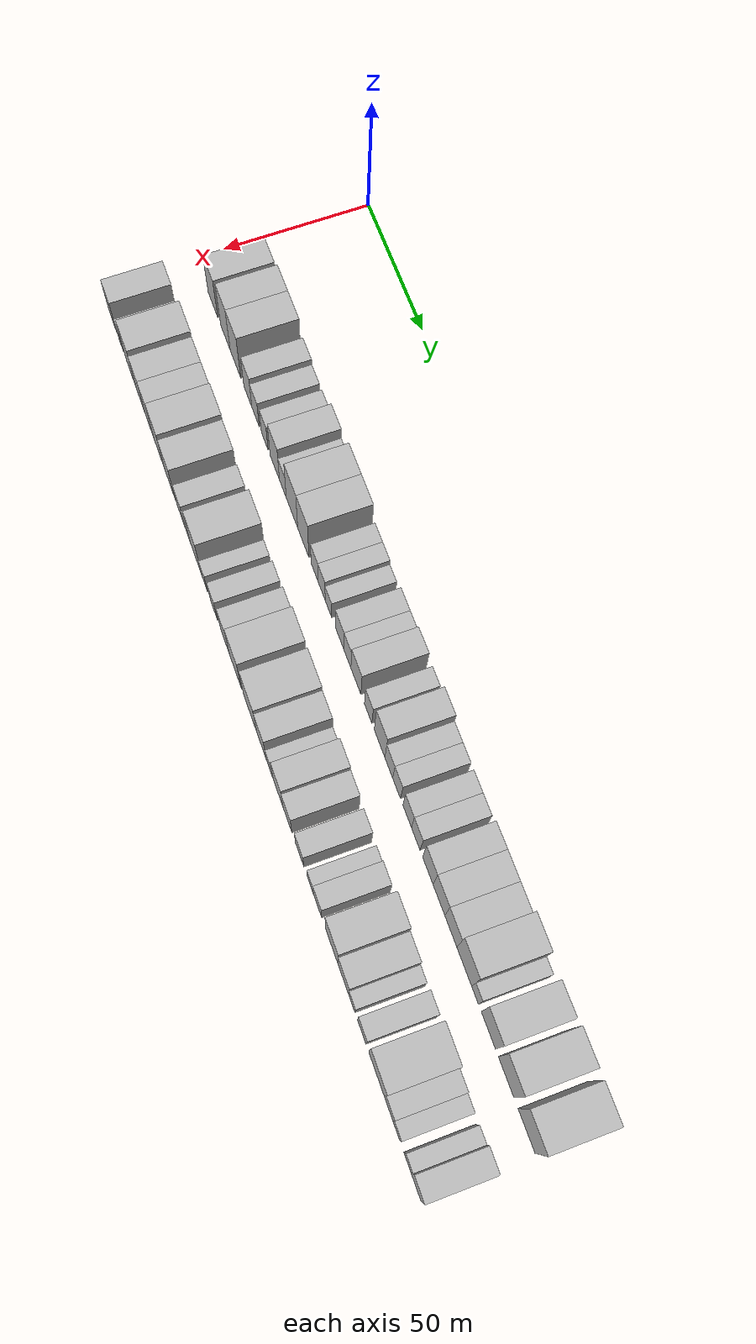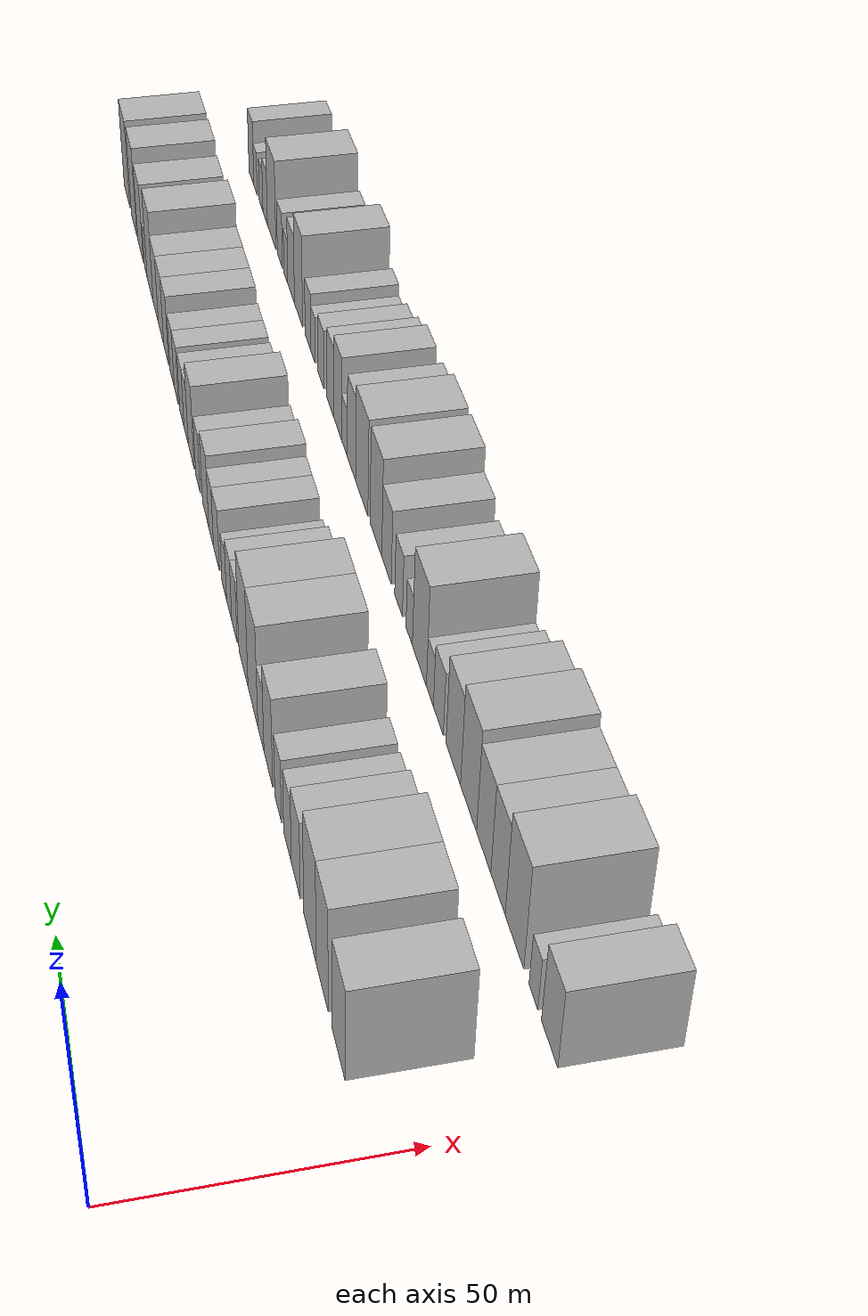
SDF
<sdf version="1.6">
 <world name="default">
  <model name="building_31">
   <static>1</static>
   <pose>50.0000 18.6461 0 0.000000 0.000000 0.000000</pose>
   <link name="link">
    <pose>0 0 10.50 0 0 0</pose>
    <collision name="collision"><geometry><box><size>20.0000 9.9068 21.0000</size></box></geometry></collision>
    <visual name="visual">
     <cast_shadows>0</cast_shadows>
     <geometry><box><size>20.0000 9.9068 21.0000</size></box></geometry>
     <material>
      <script>
       <uri>model://HANNAS_wall/materials/scripts</uri>
       <uri>model://HANNAS_wall/materials/textures</uri>
       <name>vrc/HANNAS_wall</name>
      </script>
     </material>
    </visual>
   </link>
  </model>
  <model name="building_32">
   <static>1</static>
   <pose>50.0000 31.4543 0 0.000000 0.000000 0.000000</pose>
   <link name="link">
    <pose>0 0 12.00 0 0 0</pose>
    <collision name="collision"><geometry><box><size>20.0000 9.7096 24.0000</size></box></geometry></collision>
    <visual name="visual">
     <cast_shadows>0</cast_shadows>
     <geometry><box><size>20.0000 9.7096 24.0000</size></box></geometry>
     <material>
      <script>
       <uri>model://HANNAS_wall/materials/scripts</uri>
       <uri>model://HANNAS_wall/materials/textures</uri>
       <name>vrc/HANNAS_wall</name>
      </script>
     </material>
    </visual>
   </link>
  </model>
  <model name="building_33">
   <static>1</static>
   <pose>50.0000 41.5467 0 0.000000 0.000000 0.000000</pose>
   <link name="link">
    <pose>0 0 12.00 0 0 0</pose>
    <collision name="collision"><geometry><box><size>20.0000 10.4753 24.0000</size></box></geometry></collision>
    <visual name="visual">
     <cast_shadows>0</cast_shadows>
     <geometry><box><size>20.0000 10.4753 24.0000</size></box></geometry>
     <material>
      <script>
       <uri>model://HANNAS_wall/materials/scripts</uri>
       <uri>model://HANNAS_wall/materials/textures</uri>
       <name>vrc/HANNAS_wall</name>
      </script>
     </material>
    </visual>
   </link>
  </model>
  <model name="building_34">
   <static>1</static>
   <pose>50.0000 53.7701 0 0.000000 0.000000 0.000000</pose>
   <link name="link">
    <pose>0 0 9.00 0 0 0</pose>
    <collision name="collision"><geometry><box><size>20.0000 7.9716 18.0000</size></box></geometry></collision>
    <visual name="visual">
     <cast_shadows>0</cast_shadows>
     <geometry><box><size>20.0000 7.9716 18.0000</size></box></geometry>
     <material>
      <script>
       <uri>model://HANNAS_wall/materials/scripts</uri>
       <uri>model://HANNAS_wall/materials/textures</uri>
       <name>vrc/HANNAS_wall</name>
      </script>
     </material>
    </visual>
   </link>
  </model>
  <model name="building_35">
   <static>1</static>
   <pose>50.0000 61.3067 0 0.000000 0.000000 0.000000</pose>
   <link name="link">
    <pose>0 0 7.50 0 0 0</pose>
    <collision name="collision"><geometry><box><size>20.0000 7.1015 15.0000</size></box></geometry></collision>
    <visual name="visual">
     <cast_shadows>0</cast_shadows>
     <geometry><box><size>20.0000 7.1015 15.0000</size></box></geometry>
     <material>
      <script>
       <uri>model://HANNAS_wall/materials/scripts</uri>
       <uri>model://HANNAS_wall/materials/textures</uri>
       <name>vrc/HANNAS_wall</name>
      </script>
     </material>
    </visual>
   </link>
  </model>
  <model name="building_36">
   <static>1</static>
   <pose>50.0000 70.0731 0 0.000000 0.000000 0.000000</pose>
   <link name="link">
    <pose>0 0 7.50 0 0 0</pose>
    <collision name="collision"><geometry><box><size>20.0000 6.4313 15.0000</size></box></geometry></collision>
    <visual name="visual">
     <cast_shadows>0</cast_shadows>
     <geometry><box><size>20.0000 6.4313 15.0000</size></box></geometry>
     <material>
      <script>
       <uri>model://HANNAS_wall/materials/scripts</uri>
       <uri>model://HANNAS_wall/materials/textures</uri>
       <name>vrc/HANNAS_wall</name>
      </script>
     </material>
    </visual>
   </link>
  </model>
  <model name="building_37">
   <static>1</static>
   <pose>50.0000 79.7075 0 0.000000 0.000000 0.000000</pose>
   <link name="link">
    <pose>0 0 10.50 0 0 0</pose>
    <collision name="collision"><geometry><box><size>20.0000 8.8375 21.0000</size></box></geometry></collision>
    <visual name="visual">
     <cast_shadows>0</cast_shadows>
     <geometry><box><size>20.0000 8.8375 21.0000</size></box></geometry>
     <material>
      <script>
       <uri>model://HANNAS_wall/materials/scripts</uri>
       <uri>model://HANNAS_wall/materials/textures</uri>
       <name>vrc/HANNAS_wall</name>
      </script>
     </material>
    </visual>
   </link>
  </model>
  <model name="building_38">
   <static>1</static>
   <pose>50.0000 87.2910 0 0.000000 0.000000 0.000000</pose>
   <link name="link">
    <pose>0 0 7.50 0 0 0</pose>
    <collision name="collision"><geometry><box><size>20.0000 6.3293 15.0000</size></box></geometry></collision>
    <visual name="visual">
     <cast_shadows>0</cast_shadows>
     <geometry><box><size>20.0000 6.3293 15.0000</size></box></geometry>
     <material>
      <script>
       <uri>model://HANNAS_wall/materials/scripts</uri>
       <uri>model://HANNAS_wall/materials/textures</uri>
       <name>vrc/HANNAS_wall</name>
      </script>
     </material>
    </visual>
   </link>
  </model>
  <model name="building_39">
   <static>1</static>
   <pose>50.0000 95.7228 0 0.000000 0.000000 0.000000</pose>
   <link name="link">
    <pose>0 0 12.00 0 0 0</pose>
    <collision name="collision"><geometry><box><size>20.0000 10.5344 24.0000</size></box></geometry></collision>
    <visual name="visual">
     <cast_shadows>0</cast_shadows>
     <geometry><box><size>20.0000 10.5344 24.0000</size></box></geometry>
     <material>
      <script>
       <uri>model://HANNAS_wall/materials/scripts</uri>
       <uri>model://HANNAS_wall/materials/textures</uri>
       <name>vrc/HANNAS_wall</name>
      </script>
     </material>
    </visual>
   </link>
  </model>
  <model name="building_40">
   <static>1</static>
   <pose>50.0000 106.0783 0 0.000000 0.000000 0.000000</pose>
   <link name="link">
    <pose>0 0 12.00 0 0 0</pose>
    <collision name="collision"><geometry><box><size>20.0000 10.1767 24.0000</size></box></geometry></collision>
    <visual name="visual">
     <cast_shadows>0</cast_shadows>
     <geometry><box><size>20.0000 10.1767 24.0000</size></box></geometry>
     <material>
      <script>
       <uri>model://HANNAS_wall/materials/scripts</uri>
       <uri>model://HANNAS_wall/materials/textures</uri>
       <name>vrc/HANNAS_wall</name>
      </script>
     </material>
    </visual>
   </link>
  </model>
  <model name="building_41">
   <static>1</static>
   <pose>50.0000 116.3353 0 0.000000 0.000000 0.000000</pose>
   <link name="link">
    <pose>0 0 7.50 0 0 0</pose>
    <collision name="collision"><geometry><box><size>20.0000 6.3371 15.0000</size></box></geometry></collision>
    <visual name="visual">
     <cast_shadows>0</cast_shadows>
     <geometry><box><size>20.0000 6.3371 15.0000</size></box></geometry>
     <material>
      <script>
       <uri>model://HANNAS_wall/materials/scripts</uri>
       <uri>model://HANNAS_wall/materials/textures</uri>
       <name>vrc/HANNAS_wall</name>
      </script>
     </material>
    </visual>
   </link>
  </model>
  <model name="building_42">
   <static>1</static>
   <pose>50.0000 122.5918 0 0.000000 0.000000 0.000000</pose>
   <link name="link">
    <pose>0 0 7.50 0 0 0</pose>
    <collision name="collision"><geometry><box><size>20.0000 6.1759 15.0000</size></box></geometry></collision>
    <visual name="visual">
     <cast_shadows>0</cast_shadows>
     <geometry><box><size>20.0000 6.1759 15.0000</size></box></geometry>
     <material>
      <script>
       <uri>model://HANNAS_wall/materials/scripts</uri>
       <uri>model://HANNAS_wall/materials/textures</uri>
       <name>vrc/HANNAS_wall</name>
      </script>
     </material>
    </visual>
   </link>
  </model>
  <model name="building_43">
   <static>1</static>
   <pose>50.0000 128.5750 0 0.000000 0.000000 0.000000</pose>
   <link name="link">
    <pose>0 0 6.00 0 0 0</pose>
    <collision name="collision"><geometry><box><size>20.0000 5.7906 12.0000</size></box></geometry></collision>
    <visual name="visual">
     <cast_shadows>0</cast_shadows>
     <geometry><box><size>20.0000 5.7906 12.0000</size></box></geometry>
     <material>
      <script>
       <uri>model://HANNAS_wall/materials/scripts</uri>
       <uri>model://HANNAS_wall/materials/textures</uri>
       <name>vrc/HANNAS_wall</name>
      </script>
     </material>
    </visual>
   </link>
  </model>
  <model name="building_44">
   <static>1</static>
   <pose>50.0000 138.1663 0 0.000000 0.000000 0.000000</pose>
   <link name="link">
    <pose>0 0 7.50 0 0 0</pose>
    <collision name="collision"><geometry><box><size>20.0000 7.3919 15.0000</size></box></geometry></collision>
    <visual name="visual">
     <cast_shadows>0</cast_shadows>
     <geometry><box><size>20.0000 7.3919 15.0000</size></box></geometry>
     <material>
      <script>
       <uri>model://HANNAS_wall/materials/scripts</uri>
       <uri>model://HANNAS_wall/materials/textures</uri>
       <name>vrc/HANNAS_wall</name>
      </script>
     </material>
    </visual>
   </link>
  </model>
  <model name="building_45">
   <static>1</static>
   <pose>50.0000 144.9747 0 0.000000 0.000000 0.000000</pose>
   <link name="link">
    <pose>0 0 7.50 0 0 0</pose>
    <collision name="collision"><geometry><box><size>20.0000 6.2251 15.0000</size></box></geometry></collision>
    <visual name="visual">
     <cast_shadows>0</cast_shadows>
     <geometry><box><size>20.0000 6.2251 15.0000</size></box></geometry>
     <material>
      <script>
       <uri>model://HANNAS_wall/materials/scripts</uri>
       <uri>model://HANNAS_wall/materials/textures</uri>
       <name>vrc/HANNAS_wall</name>
      </script>
     </material>
    </visual>
   </link>
  </model>
  <model name="building_46">
   <static>1</static>
   <pose>50.0000 152.2790 0 0.000000 0.000000 0.000000</pose>
   <link name="link">
    <pose>0 0 9.00 0 0 0</pose>
    <collision name="collision"><geometry><box><size>20.0000 8.3834 18.0000</size></box></geometry></collision>
    <visual name="visual">
     <cast_shadows>0</cast_shadows>
     <geometry><box><size>20.0000 8.3834 18.0000</size></box></geometry>
     <material>
      <script>
       <uri>model://HANNAS_wall/materials/scripts</uri>
       <uri>model://HANNAS_wall/materials/textures</uri>
       <name>vrc/HANNAS_wall</name>
      </script>
     </material>
    </visual>
   </link>
  </model>
  <model name="building_47">
   <static>1</static>
   <pose>50.0000 162.5664 0 0.000000 0.000000 0.000000</pose>
   <link name="link">
    <pose>0 0 7.50 0 0 0</pose>
    <collision name="collision"><geometry><box><size>20.0000 6.1914 15.0000</size></box></geometry></collision>
    <visual name="visual">
     <cast_shadows>0</cast_shadows>
     <geometry><box><size>20.0000 6.1914 15.0000</size></box></geometry>
     <material>
      <script>
       <uri>model://HANNAS_wall/materials/scripts</uri>
       <uri>model://HANNAS_wall/materials/textures</uri>
       <name>vrc/HANNAS_wall</name>
      </script>
     </material>
    </visual>
   </link>
  </model>
  <model name="building_48">
   <static>1</static>
   <pose>50.0000 172.0053 0 0.000000 0.000000 0.000000</pose>
   <link name="link">
    <pose>0 0 10.50 0 0 0</pose>
    <collision name="collision"><geometry><box><size>20.0000 8.6865 21.0000</size></box></geometry></collision>
    <visual name="visual">
     <cast_shadows>0</cast_shadows>
     <geometry><box><size>20.0000 8.6865 21.0000</size></box></geometry>
     <material>
      <script>
       <uri>model://HANNAS_wall/materials/scripts</uri>
       <uri>model://HANNAS_wall/materials/textures</uri>
       <name>vrc/HANNAS_wall</name>
      </script>
     </material>
    </visual>
   </link>
  </model>
  <model name="building_49">
   <static>1</static>
   <pose>50.0000 179.5448 0 0.000000 0.000000 0.000000</pose>
   <link name="link">
    <pose>0 0 7.50 0 0 0</pose>
    <collision name="collision"><geometry><box><size>20.0000 6.3926 15.0000</size></box></geometry></collision>
    <visual name="visual">
     <cast_shadows>0</cast_shadows>
     <geometry><box><size>20.0000 6.3926 15.0000</size></box></geometry>
     <material>
      <script>
       <uri>model://HANNAS_wall/materials/scripts</uri>
       <uri>model://HANNAS_wall/materials/textures</uri>
       <name>vrc/HANNAS_wall</name>
      </script>
     </material>
    </visual>
   </link>
  </model>
  <model name="building_50">
   <static>1</static>
   <pose>50.0000 185.8304 0 0.000000 0.000000 0.000000</pose>
   <link name="link">
    <pose>0 0 7.50 0 0 0</pose>
    <collision name="collision"><geometry><box><size>20.0000 6.1786 15.0000</size></box></geometry></collision>
    <visual name="visual">
     <cast_shadows>0</cast_shadows>
     <geometry><box><size>20.0000 6.1786 15.0000</size></box></geometry>
     <material>
      <script>
       <uri>model://HANNAS_wall/materials/scripts</uri>
       <uri>model://HANNAS_wall/materials/textures</uri>
       <name>vrc/HANNAS_wall</name>
      </script>
     </material>
    </visual>
   </link>
  </model>
  <model name="building_51">
   <static>1</static>
   <pose>50.0000 194.2965 0 0.000000 0.000000 0.000000</pose>
   <link name="link">
    <pose>0 0 7.50 0 0 0</pose>
    <collision name="collision"><geometry><box><size>20.0000 6.7537 15.0000</size></box></geometry></collision>
    <visual name="visual">
     <cast_shadows>0</cast_shadows>
     <geometry><box><size>20.0000 6.7537 15.0000</size></box></geometry>
     <material>
      <script>
       <uri>model://HANNAS_wall/materials/scripts</uri>
       <uri>model://HANNAS_wall/materials/textures</uri>
       <name>vrc/HANNAS_wall</name>
      </script>
     </material>
    </visual>
   </link>
  </model>
  <model name="building_52">
   <static>1</static>
   <pose>50.0000 201.0290 0 0.000000 0.000000 0.000000</pose>
   <link name="link">
    <pose>0 0 7.50 0 0 0</pose>
    <collision name="collision"><geometry><box><size>20.0000 6.7113 15.0000</size></box></geometry></collision>
    <visual name="visual">
     <cast_shadows>0</cast_shadows>
     <geometry><box><size>20.0000 6.7113 15.0000</size></box></geometry>
     <material>
      <script>
       <uri>model://HANNAS_wall/materials/scripts</uri>
       <uri>model://HANNAS_wall/materials/textures</uri>
       <name>vrc/HANNAS_wall</name>
      </script>
     </material>
    </visual>
   </link>
  </model>
  <model name="building_53">
   <static>1</static>
   <pose>50.0000 210.4382 0 0.000000 0.000000 0.000000</pose>
   <link name="link">
    <pose>0 0 9.00 0 0 0</pose>
    <collision name="collision"><geometry><box><size>20.0000 8.1071 18.0000</size></box></geometry></collision>
    <visual name="visual">
     <cast_shadows>0</cast_shadows>
     <geometry><box><size>20.0000 8.1071 18.0000</size></box></geometry>
     <material>
      <script>
       <uri>model://HANNAS_wall/materials/scripts</uri>
       <uri>model://HANNAS_wall/materials/textures</uri>
       <name>vrc/HANNAS_wall</name>
      </script>
     </material>
    </visual>
   </link>
  </model>
  <model name="building_54">
   <static>1</static>
   <pose>50.0000 218.9860 0 0.000000 0.000000 0.000000</pose>
   <link name="link">
    <pose>0 0 9.00 0 0 0</pose>
    <collision name="collision"><geometry><box><size>20.0000 8.9886 18.0000</size></box></geometry></collision>
    <visual name="visual">
     <cast_shadows>0</cast_shadows>
     <geometry><box><size>20.0000 8.9886 18.0000</size></box></geometry>
     <material>
      <script>
       <uri>model://HANNAS_wall/materials/scripts</uri>
       <uri>model://HANNAS_wall/materials/textures</uri>
       <name>vrc/HANNAS_wall</name>
      </script>
     </material>
    </visual>
   </link>
  </model>
  <model name="building_55">
   <static>1</static>
   <pose>50.0000 227.9775 0 0.000000 0.000000 0.000000</pose>
   <link name="link">
    <pose>0 0 9.00 0 0 0</pose>
    <collision name="collision"><geometry><box><size>20.0000 8.9945 18.0000</size></box></geometry></collision>
    <visual name="visual">
     <cast_shadows>0</cast_shadows>
     <geometry><box><size>20.0000 8.9945 18.0000</size></box></geometry>
     <material>
      <script>
       <uri>model://HANNAS_wall/materials/scripts</uri>
       <uri>model://HANNAS_wall/materials/textures</uri>
       <name>vrc/HANNAS_wall</name>
      </script>
     </material>
    </visual>
   </link>
  </model>
  <model name="building_56">
   <static>1</static>
   <pose>50.0000 237.9417 0 0.000000 0.000000 0.000000</pose>
   <link name="link">
    <pose>0 0 12.00 0 0 0</pose>
    <collision name="collision"><geometry><box><size>20.0000 10.9339 24.0000</size></box></geometry></collision>
    <visual name="visual">
     <cast_shadows>0</cast_shadows>
     <geometry><box><size>20.0000 10.9339 24.0000</size></box></geometry>
     <material>
      <script>
       <uri>model://HANNAS_wall/materials/scripts</uri>
       <uri>model://HANNAS_wall/materials/textures</uri>
       <name>vrc/HANNAS_wall</name>
      </script>
     </material>
    </visual>
   </link>
  </model>
  <model name="building_57">
   <static>1</static>
   <pose>50.0000 245.8787 0 0.000000 0.000000 0.000000</pose>
   <link name="link">
    <pose>0 0 6.00 0 0 0</pose>
    <collision name="collision"><geometry><box><size>20.0000 4.9400 12.0000</size></box></geometry></collision>
    <visual name="visual">
     <cast_shadows>0</cast_shadows>
     <geometry><box><size>20.0000 4.9400 12.0000</size></box></geometry>
     <material>
      <script>
       <uri>model://HANNAS_wall/materials/scripts</uri>
       <uri>model://HANNAS_wall/materials/textures</uri>
       <name>vrc/HANNAS_wall</name>
      </script>
     </material>
    </visual>
   </link>
  </model>
  <model name="building_58">
   <static>1</static>
   <pose>50.0000 255.4350 0 0.000000 0.000000 0.000000</pose>
   <link name="link">
    <pose>0 0 10.50 0 0 0</pose>
    <collision name="collision"><geometry><box><size>20.0000 10.1725 21.0000</size></box></geometry></collision>
    <visual name="visual">
     <cast_shadows>0</cast_shadows>
     <geometry><box><size>20.0000 10.1725 21.0000</size></box></geometry>
     <material>
      <script>
       <uri>model://HANNAS_wall/materials/scripts</uri>
       <uri>model://HANNAS_wall/materials/textures</uri>
       <name>vrc/HANNAS_wall</name>
      </script>
     </material>
    </visual>
   </link>
  </model>
  <model name="building_59">
   <static>1</static>
   <pose>50.0000 267.9128 0 0.000000 0.000000 0.000000</pose>
   <link name="link">
    <pose>0 0 12.00 0 0 0</pose>
    <collision name="collision"><geometry><box><size>20.0000 10.7831 24.0000</size></box></geometry></collision>
    <visual name="visual">
     <cast_shadows>0</cast_shadows>
     <geometry><box><size>20.0000 10.7831 24.0000</size></box></geometry>
     <material>
      <script>
       <uri>model://HANNAS_wall/materials/scripts</uri>
       <uri>model://HANNAS_wall/materials/textures</uri>
       <name>vrc/HANNAS_wall</name>
      </script>
     </material>
    </visual>
   </link>
  </model>
  <model name="building_60">
   <static>1</static>
   <pose>50.0000 282.1085 0 0.000000 0.000000 0.000000</pose>
   <link name="link">
    <pose>0 0 12.00 0 0 0</pose>
    <collision name="collision"><geometry><box><size>20.0000 11.6082 24.0000</size></box></geometry></collision>
    <visual name="visual">
     <cast_shadows>0</cast_shadows>
     <geometry><box><size>20.0000 11.6082 24.0000</size></box></geometry>
     <material>
      <script>
       <uri>model://HANNAS_wall/materials/scripts</uri>
       <uri>model://HANNAS_wall/materials/textures</uri>
       <name>vrc/HANNAS_wall</name>
      </script>
     </material>
    </visual>
   </link>
  </model>
  <model name="building_92">
   <static>1</static>
   <pose>82.0000 13.9997 0 0.000000 0.000000 0.000000</pose>
   <link name="link">
    <pose>0 0 9.00 0 0 0</pose>
    <collision name="collision"><geometry><box><size>20.0000 8.9825 18.0000</size></box></geometry></collision>
    <visual name="visual">
     <cast_shadows>0</cast_shadows>
     <geometry><box><size>20.0000 8.9825 18.0000</size></box></geometry>
     <material>
      <script>
       <uri>model://HANNAS_wall/materials/scripts</uri>
       <uri>model://HANNAS_wall/materials/textures</uri>
       <name>vrc/HANNAS_wall</name>
      </script>
     </material>
    </visual>
   </link>
  </model>
  <model name="building_93">
   <static>1</static>
   <pose>82.0000 23.0191 0 0.000000 0.000000 0.000000</pose>
   <link name="link">
    <pose>0 0 6.00 0 0 0</pose>
    <collision name="collision"><geometry><box><size>20.0000 5.0563 12.0000</size></box></geometry></collision>
    <visual name="visual">
     <cast_shadows>0</cast_shadows>
     <geometry><box><size>20.0000 5.0563 12.0000</size></box></geometry>
     <material>
      <script>
       <uri>model://HANNAS_wall/materials/scripts</uri>
       <uri>model://HANNAS_wall/materials/textures</uri>
       <name>vrc/HANNAS_wall</name>
      </script>
     </material>
    </visual>
   </link>
  </model>
  <model name="building_94">
   <static>1</static>
   <pose>82.0000 34.1795 0 0.000000 0.000000 0.000000</pose>
   <link name="link">
    <pose>0 0 12.00 0 0 0</pose>
    <collision name="collision"><geometry><box><size>20.0000 11.2644 24.0000</size></box></geometry></collision>
    <visual name="visual">
     <cast_shadows>0</cast_shadows>
     <geometry><box><size>20.0000 11.2644 24.0000</size></box></geometry>
     <material>
      <script>
       <uri>model://HANNAS_wall/materials/scripts</uri>
       <uri>model://HANNAS_wall/materials/textures</uri>
       <name>vrc/HANNAS_wall</name>
      </script>
     </material>
    </visual>
   </link>
  </model>
  <model name="building_95">
   <static>1</static>
   <pose>82.0000 44.3435 0 0.000000 0.000000 0.000000</pose>
   <link name="link">
    <pose>0 0 10.50 0 0 0</pose>
    <collision name="collision"><geometry><box><size>20.0000 9.0637 21.0000</size></box></geometry></collision>
    <visual name="visual">
     <cast_shadows>0</cast_shadows>
     <geometry><box><size>20.0000 9.0637 21.0000</size></box></geometry>
     <material>
      <script>
       <uri>model://HANNAS_wall/materials/scripts</uri>
       <uri>model://HANNAS_wall/materials/textures</uri>
       <name>vrc/HANNAS_wall</name>
      </script>
     </material>
    </visual>
   </link>
  </model>
  <model name="building_96">
   <static>1</static>
   <pose>82.0000 53.5678 0 0.000000 0.000000 0.000000</pose>
   <link name="link">
    <pose>0 0 10.50 0 0 0</pose>
    <collision name="collision"><geometry><box><size>20.0000 9.3848 21.0000</size></box></geometry></collision>
    <visual name="visual">
     <cast_shadows>0</cast_shadows>
     <geometry><box><size>20.0000 9.3848 21.0000</size></box></geometry>
     <material>
      <script>
       <uri>model://HANNAS_wall/materials/scripts</uri>
       <uri>model://HANNAS_wall/materials/textures</uri>
       <name>vrc/HANNAS_wall</name>
      </script>
     </material>
    </visual>
   </link>
  </model>
  <model name="building_97">
   <static>1</static>
   <pose>82.0000 63.7825 0 0.000000 0.000000 0.000000</pose>
   <link name="link">
    <pose>0 0 12.00 0 0 0</pose>
    <collision name="collision"><geometry><box><size>20.0000 11.0447 24.0000</size></box></geometry></collision>
    <visual name="visual">
     <cast_shadows>0</cast_shadows>
     <geometry><box><size>20.0000 11.0447 24.0000</size></box></geometry>
     <material>
      <script>
       <uri>model://HANNAS_wall/materials/scripts</uri>
       <uri>model://HANNAS_wall/materials/textures</uri>
       <name>vrc/HANNAS_wall</name>
      </script>
     </material>
    </visual>
   </link>
  </model>
  <model name="building_98">
   <static>1</static>
   <pose>82.0000 74.5364 0 0.000000 0.000000 0.000000</pose>
   <link name="link">
    <pose>0 0 10.50 0 0 0</pose>
    <collision name="collision"><geometry><box><size>20.0000 10.4630 21.0000</size></box></geometry></collision>
    <visual name="visual">
     <cast_shadows>0</cast_shadows>
     <geometry><box><size>20.0000 10.4630 21.0000</size></box></geometry>
     <material>
      <script>
       <uri>model://HANNAS_wall/materials/scripts</uri>
       <uri>model://HANNAS_wall/materials/textures</uri>
       <name>vrc/HANNAS_wall</name>
      </script>
     </material>
    </visual>
   </link>
  </model>
  <model name="building_99">
   <static>1</static>
   <pose>82.0000 85.5114 0 0.000000 0.000000 0.000000</pose>
   <link name="link">
    <pose>0 0 7.50 0 0 0</pose>
    <collision name="collision"><geometry><box><size>20.0000 7.4872 15.0000</size></box></geometry></collision>
    <visual name="visual">
     <cast_shadows>0</cast_shadows>
     <geometry><box><size>20.0000 7.4872 15.0000</size></box></geometry>
     <material>
      <script>
       <uri>model://HANNAS_wall/materials/scripts</uri>
       <uri>model://HANNAS_wall/materials/textures</uri>
       <name>vrc/HANNAS_wall</name>
      </script>
     </material>
    </visual>
   </link>
  </model>
  <model name="building_100">
   <static>1</static>
   <pose>82.0000 91.9679 0 0.000000 0.000000 0.000000</pose>
   <link name="link">
    <pose>0 0 6.00 0 0 0</pose>
    <collision name="collision"><geometry><box><size>20.0000 5.4258 12.0000</size></box></geometry></collision>
    <visual name="visual">
     <cast_shadows>0</cast_shadows>
     <geometry><box><size>20.0000 5.4258 12.0000</size></box></geometry>
     <material>
      <script>
       <uri>model://HANNAS_wall/materials/scripts</uri>
       <uri>model://HANNAS_wall/materials/textures</uri>
       <name>vrc/HANNAS_wall</name>
      </script>
     </material>
    </visual>
   </link>
  </model>
  <model name="building_101">
   <static>1</static>
   <pose>82.0000 100.3058 0 0.000000 0.000000 0.000000</pose>
   <link name="link">
    <pose>0 0 12.00 0 0 0</pose>
    <collision name="collision"><geometry><box><size>20.0000 11.2501 24.0000</size></box></geometry></collision>
    <visual name="visual">
     <cast_shadows>0</cast_shadows>
     <geometry><box><size>20.0000 11.2501 24.0000</size></box></geometry>
     <material>
      <script>
       <uri>model://HANNAS_wall/materials/scripts</uri>
       <uri>model://HANNAS_wall/materials/textures</uri>
       <name>vrc/HANNAS_wall</name>
      </script>
     </material>
    </visual>
   </link>
  </model>
  <model name="building_102">
   <static>1</static>
   <pose>82.0000 108.5833 0 0.000000 0.000000 0.000000</pose>
   <link name="link">
    <pose>0 0 6.00 0 0 0</pose>
    <collision name="collision"><geometry><box><size>20.0000 5.3048 12.0000</size></box></geometry></collision>
    <visual name="visual">
     <cast_shadows>0</cast_shadows>
     <geometry><box><size>20.0000 5.3048 12.0000</size></box></geometry>
     <material>
      <script>
       <uri>model://HANNAS_wall/materials/scripts</uri>
       <uri>model://HANNAS_wall/materials/textures</uri>
       <name>vrc/HANNAS_wall</name>
      </script>
     </material>
    </visual>
   </link>
  </model>
  <model name="building_103">
   <static>1</static>
   <pose>82.0000 117.5662 0 0.000000 0.000000 0.000000</pose>
   <link name="link">
    <pose>0 0 7.50 0 0 0</pose>
    <collision name="collision"><geometry><box><size>20.0000 6.6611 15.0000</size></box></geometry></collision>
    <visual name="visual">
     <cast_shadows>0</cast_shadows>
     <geometry><box><size>20.0000 6.6611 15.0000</size></box></geometry>
     <material>
      <script>
       <uri>model://HANNAS_wall/materials/scripts</uri>
       <uri>model://HANNAS_wall/materials/textures</uri>
       <name>vrc/HANNAS_wall</name>
      </script>
     </material>
    </visual>
   </link>
  </model>
  <model name="building_104">
   <static>1</static>
   <pose>82.0000 128.1525 0 0.000000 0.000000 0.000000</pose>
   <link name="link">
    <pose>0 0 9.00 0 0 0</pose>
    <collision name="collision"><geometry><box><size>20.0000 8.5114 18.0000</size></box></geometry></collision>
    <visual name="visual">
     <cast_shadows>0</cast_shadows>
     <geometry><box><size>20.0000 8.5114 18.0000</size></box></geometry>
     <material>
      <script>
       <uri>model://HANNAS_wall/materials/scripts</uri>
       <uri>model://HANNAS_wall/materials/textures</uri>
       <name>vrc/HANNAS_wall</name>
      </script>
     </material>
    </visual>
   </link>
  </model>
  <model name="building_105">
   <static>1</static>
   <pose>82.0000 137.8595 0 0.000000 0.000000 0.000000</pose>
   <link name="link">
    <pose>0 0 12.00 0 0 0</pose>
    <collision name="collision"><geometry><box><size>20.0000 10.9026 24.0000</size></box></geometry></collision>
    <visual name="visual">
     <cast_shadows>0</cast_shadows>
     <geometry><box><size>20.0000 10.9026 24.0000</size></box></geometry>
     <material>
      <script>
       <uri>model://HANNAS_wall/materials/scripts</uri>
       <uri>model://HANNAS_wall/materials/textures</uri>
       <name>vrc/HANNAS_wall</name>
      </script>
     </material>
    </visual>
   </link>
  </model>
  <model name="building_106">
   <static>1</static>
   <pose>82.0000 151.2969 0 0.000000 0.000000 0.000000</pose>
   <link name="link">
    <pose>0 0 12.00 0 0 0</pose>
    <collision name="collision"><geometry><box><size>20.0000 11.9722 24.0000</size></box></geometry></collision>
    <visual name="visual">
     <cast_shadows>0</cast_shadows>
     <geometry><box><size>20.0000 11.9722 24.0000</size></box></geometry>
     <material>
      <script>
       <uri>model://HANNAS_wall/materials/scripts</uri>
       <uri>model://HANNAS_wall/materials/textures</uri>
       <name>vrc/HANNAS_wall</name>
      </script>
     </material>
    </visual>
   </link>
  </model>
  <model name="building_107">
   <static>1</static>
   <pose>82.0000 161.4919 0 0.000000 0.000000 0.000000</pose>
   <link name="link">
    <pose>0 0 10.50 0 0 0</pose>
    <collision name="collision"><geometry><box><size>20.0000 8.4177 21.0000</size></box></geometry></collision>
    <visual name="visual">
     <cast_shadows>0</cast_shadows>
     <geometry><box><size>20.0000 8.4177 21.0000</size></box></geometry>
     <material>
      <script>
       <uri>model://HANNAS_wall/materials/scripts</uri>
       <uri>model://HANNAS_wall/materials/textures</uri>
       <name>vrc/HANNAS_wall</name>
      </script>
     </material>
    </visual>
   </link>
  </model>
  <model name="building_108">
   <static>1</static>
   <pose>82.0000 168.6407 0 0.000000 0.000000 0.000000</pose>
   <link name="link">
    <pose>0 0 6.00 0 0 0</pose>
    <collision name="collision"><geometry><box><size>20.0000 5.8800 12.0000</size></box></geometry></collision>
    <visual name="visual">
     <cast_shadows>0</cast_shadows>
     <geometry><box><size>20.0000 5.8800 12.0000</size></box></geometry>
     <material>
      <script>
       <uri>model://HANNAS_wall/materials/scripts</uri>
       <uri>model://HANNAS_wall/materials/textures</uri>
       <name>vrc/HANNAS_wall</name>
      </script>
     </material>
    </visual>
   </link>
  </model>
  <model name="building_109">
   <static>1</static>
   <pose>82.0000 175.8498 0 0.000000 0.000000 0.000000</pose>
   <link name="link">
    <pose>0 0 10.50 0 0 0</pose>
    <collision name="collision"><geometry><box><size>20.0000 8.5383 21.0000</size></box></geometry></collision>
    <visual name="visual">
     <cast_shadows>0</cast_shadows>
     <geometry><box><size>20.0000 8.5383 21.0000</size></box></geometry>
     <material>
      <script>
       <uri>model://HANNAS_wall/materials/scripts</uri>
       <uri>model://HANNAS_wall/materials/textures</uri>
       <name>vrc/HANNAS_wall</name>
      </script>
     </material>
    </visual>
   </link>
  </model>
  <model name="building_110">
   <static>1</static>
   <pose>82.0000 183.9317 0 0.000000 0.000000 0.000000</pose>
   <link name="link">
    <pose>0 0 9.00 0 0 0</pose>
    <collision name="collision"><geometry><box><size>20.0000 7.6254 18.0000</size></box></geometry></collision>
    <visual name="visual">
     <cast_shadows>0</cast_shadows>
     <geometry><box><size>20.0000 7.6254 18.0000</size></box></geometry>
     <material>
      <script>
       <uri>model://HANNAS_wall/materials/scripts</uri>
       <uri>model://HANNAS_wall/materials/textures</uri>
       <name>vrc/HANNAS_wall</name>
      </script>
     </material>
    </visual>
   </link>
  </model>
  <model name="building_111">
   <static>1</static>
   <pose>82.0000 194.2842 0 0.000000 0.000000 0.000000</pose>
   <link name="link">
    <pose>0 0 7.50 0 0 0</pose>
    <collision name="collision"><geometry><box><size>20.0000 7.0797 15.0000</size></box></geometry></collision>
    <visual name="visual">
     <cast_shadows>0</cast_shadows>
     <geometry><box><size>20.0000 7.0797 15.0000</size></box></geometry>
     <material>
      <script>
       <uri>model://HANNAS_wall/materials/scripts</uri>
       <uri>model://HANNAS_wall/materials/textures</uri>
       <name>vrc/HANNAS_wall</name>
      </script>
     </material>
    </visual>
   </link>
  </model>
  <model name="building_112">
   <static>1</static>
   <pose>82.0000 203.2777 0 0.000000 0.000000 0.000000</pose>
   <link name="link">
    <pose>0 0 6.00 0 0 0</pose>
    <collision name="collision"><geometry><box><size>20.0000 4.9073 12.0000</size></box></geometry></collision>
    <visual name="visual">
     <cast_shadows>0</cast_shadows>
     <geometry><box><size>20.0000 4.9073 12.0000</size></box></geometry>
     <material>
      <script>
       <uri>model://HANNAS_wall/materials/scripts</uri>
       <uri>model://HANNAS_wall/materials/textures</uri>
       <name>vrc/HANNAS_wall</name>
      </script>
     </material>
    </visual>
   </link>
  </model>
  <model name="building_113">
   <static>1</static>
   <pose>82.0000 209.1428 0 0.000000 0.000000 0.000000</pose>
   <link name="link">
    <pose>0 0 7.50 0 0 0</pose>
    <collision name="collision"><geometry><box><size>20.0000 6.8228 15.0000</size></box></geometry></collision>
    <visual name="visual">
     <cast_shadows>0</cast_shadows>
     <geometry><box><size>20.0000 6.8228 15.0000</size></box></geometry>
     <material>
      <script>
       <uri>model://HANNAS_wall/materials/scripts</uri>
       <uri>model://HANNAS_wall/materials/textures</uri>
       <name>vrc/HANNAS_wall</name>
      </script>
     </material>
    </visual>
   </link>
  </model>
  <model name="building_114">
   <static>1</static>
   <pose>82.0000 220.6018 0 0.000000 0.000000 0.000000</pose>
   <link name="link">
    <pose>0 0 12.00 0 0 0</pose>
    <collision name="collision"><geometry><box><size>20.0000 10.0952 24.0000</size></box></geometry></collision>
    <visual name="visual">
     <cast_shadows>0</cast_shadows>
     <geometry><box><size>20.0000 10.0952 24.0000</size></box></geometry>
     <material>
      <script>
       <uri>model://HANNAS_wall/materials/scripts</uri>
       <uri>model://HANNAS_wall/materials/textures</uri>
       <name>vrc/HANNAS_wall</name>
      </script>
     </material>
    </visual>
   </link>
  </model>
  <model name="building_115">
   <static>1</static>
   <pose>82.0000 229.9050 0 0.000000 0.000000 0.000000</pose>
   <link name="link">
    <pose>0 0 9.00 0 0 0</pose>
    <collision name="collision"><geometry><box><size>20.0000 8.5112 18.0000</size></box></geometry></collision>
    <visual name="visual">
     <cast_shadows>0</cast_shadows>
     <geometry><box><size>20.0000 8.5112 18.0000</size></box></geometry>
     <material>
      <script>
       <uri>model://HANNAS_wall/materials/scripts</uri>
       <uri>model://HANNAS_wall/materials/textures</uri>
       <name>vrc/HANNAS_wall</name>
      </script>
     </material>
    </visual>
   </link>
  </model>
  <model name="building_116">
   <static>1</static>
   <pose>82.0000 236.6588 0 0.000000 0.000000 0.000000</pose>
   <link name="link">
    <pose>0 0 6.00 0 0 0</pose>
    <collision name="collision"><geometry><box><size>20.0000 4.9964 12.0000</size></box></geometry></collision>
    <visual name="visual">
     <cast_shadows>0</cast_shadows>
     <geometry><box><size>20.0000 4.9964 12.0000</size></box></geometry>
     <material>
      <script>
       <uri>model://HANNAS_wall/materials/scripts</uri>
       <uri>model://HANNAS_wall/materials/textures</uri>
       <name>vrc/HANNAS_wall</name>
      </script>
     </material>
    </visual>
   </link>
  </model>
  <model name="building_117">
   <static>1</static>
   <pose>82.0000 244.4549 0 0.000000 0.000000 0.000000</pose>
   <link name="link">
    <pose>0 0 7.50 0 0 0</pose>
    <collision name="collision"><geometry><box><size>20.0000 6.5958 15.0000</size></box></geometry></collision>
    <visual name="visual">
     <cast_shadows>0</cast_shadows>
     <geometry><box><size>20.0000 6.5958 15.0000</size></box></geometry>
     <material>
      <script>
       <uri>model://HANNAS_wall/materials/scripts</uri>
       <uri>model://HANNAS_wall/materials/textures</uri>
       <name>vrc/HANNAS_wall</name>
      </script>
     </material>
    </visual>
   </link>
  </model>
  <model name="building_118">
   <static>1</static>
   <pose>82.0000 255.6539 0 0.000000 0.000000 0.000000</pose>
   <link name="link">
    <pose>0 0 12.00 0 0 0</pose>
    <collision name="collision"><geometry><box><size>20.0000 11.8021 24.0000</size></box></geometry></collision>
    <visual name="visual">
     <cast_shadows>0</cast_shadows>
     <geometry><box><size>20.0000 11.8021 24.0000</size></box></geometry>
     <material>
      <script>
       <uri>model://HANNAS_wall/materials/scripts</uri>
       <uri>model://HANNAS_wall/materials/textures</uri>
       <name>vrc/HANNAS_wall</name>
      </script>
     </material>
    </visual>
   </link>
  </model>
  <model name="building_119">
   <static>1</static>
   <pose>82.0000 264.7272 0 0.000000 0.000000 0.000000</pose>
   <link name="link">
    <pose>0 0 7.50 0 0 0</pose>
    <collision name="collision"><geometry><box><size>20.0000 6.3447 15.0000</size></box></geometry></collision>
    <visual name="visual">
     <cast_shadows>0</cast_shadows>
     <geometry><box><size>20.0000 6.3447 15.0000</size></box></geometry>
     <material>
      <script>
       <uri>model://HANNAS_wall/materials/scripts</uri>
       <uri>model://HANNAS_wall/materials/textures</uri>
       <name>vrc/HANNAS_wall</name>
      </script>
     </material>
    </visual>
   </link>
  </model>
  <model name="building_120">
   <static>1</static>
   <pose>82.0000 270.5198 0 0.000000 0.000000 0.000000</pose>
   <link name="link">
    <pose>0 0 6.00 0 0 0</pose>
    <collision name="collision"><geometry><box><size>20.0000 5.2405 12.0000</size></box></geometry></collision>
    <visual name="visual">
     <cast_shadows>0</cast_shadows>
     <geometry><box><size>20.0000 5.2405 12.0000</size></box></geometry>
     <material>
      <script>
       <uri>model://HANNAS_wall/materials/scripts</uri>
       <uri>model://HANNAS_wall/materials/textures</uri>
       <name>vrc/HANNAS_wall</name>
      </script>
     </material>
    </visual>
   </link>
  </model>
  <model name="building_121">
   <static>1</static>
   <pose>82.0000 278.6338 0 0.000000 0.000000 0.000000</pose>
   <link name="link">
    <pose>0 0 6.00 0 0 0</pose>
    <collision name="collision"><geometry><box><size>20.0000 4.9875 12.0000</size></box></geometry></collision>
    <visual name="visual">
     <cast_shadows>0</cast_shadows>
     <geometry><box><size>20.0000 4.9875 12.0000</size></box></geometry>
     <material>
      <script>
       <uri>model://HANNAS_wall/materials/scripts</uri>
       <uri>model://HANNAS_wall/materials/textures</uri>
       <name>vrc/HANNAS_wall</name>
      </script>
     </material>
    </visual>
   </link>
  </model>
  <model name="building_122">
   <static>1</static>
   <pose>82.0000 284.7415 0 0.000000 0.000000 0.000000</pose>
   <link name="link">
    <pose>0 0 9.00 0 0 0</pose>
    <collision name="collision"><geometry><box><size>20.0000 7.2278 18.0000</size></box></geometry></collision>
    <visual name="visual">
     <cast_shadows>0</cast_shadows>
     <geometry><box><size>20.0000 7.2278 18.0000</size></box></geometry>
     <material>
      <script>
       <uri>model://HANNAS_wall/materials/scripts</uri>
       <uri>model://HANNAS_wall/materials/textures</uri>
       <name>vrc/HANNAS_wall</name>
      </script>
     </material>
    </visual>
   </link>
  </model>
 </world>
</sdf>
